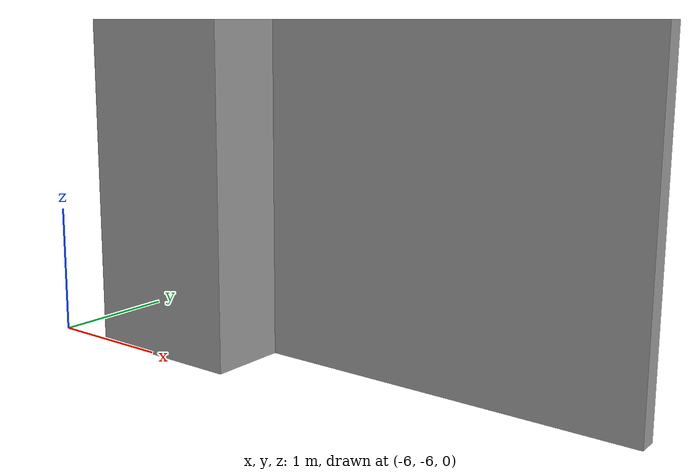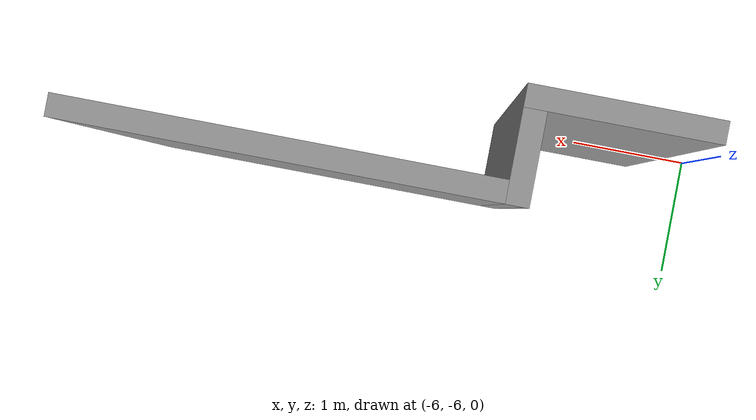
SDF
<?xml version='1.0'?>
<sdf version='1.6'>
  <model name='model_glass'>
    <pose frame=''>-2.7525 -3.0125 0 0 -0 0</pose>
    <link name='Wall_7'>
      <collision name='Wall_7_Collision'>
        <geometry>
          <box>
            <size>1.25 0.15 2.5</size>
          </box>
        </geometry>
        <pose frame=''>0 0 1.25 0 -0 0</pose>
      </collision>
      <visual name='Wall_7_Visual'>
        <pose frame=''>0 0 1.25 0 -0 0</pose>
        <geometry>
          <box>
            <size>1.25 0.15 2.5</size>
          </box>
        </geometry>
        <material>
          <script>
            <uri>file://media/materials/scripts/gazebo.material</uri>
            <name>Gazebo/Grey</name>
          </script>
          <ambient>1 1 1 1</ambient>
        </material>
        <meta>
          <layer>0</layer>
        </meta>
      </visual>
      <pose frame=''>-2.1275 -2.9375 0 0 -0 0</pose>
    </link>
    <link name='Wall_8'>
      <collision name='Wall_8_Collision'>
        <geometry>
          <box>
            <size>0.75 0.15 2.5</size>
          </box>
        </geometry>
        <pose frame=''>0 0 1.25 0 -0 0</pose>
      </collision>
      <visual name='Wall_8_Visual'>
        <pose frame=''>0 0 1.25 0 -0 0</pose>
        <geometry>
          <box>
            <size>0.75 0.15 2.5</size>
          </box>
        </geometry>
        <material>
          <script>
            <uri>file://media/materials/scripts/gazebo.material</uri>
            <name>Gazebo/Grey</name>
          </script>
          <ambient>1 1 1 1</ambient>
        </material>
        <meta>
          <layer>0</layer>
        </meta>
      </visual>
      <pose frame=''>-1.5775 -2.6375 0 0 -0 1.5708</pose>
    </link>
    <link name='Wall_9'>
      <collision name='Wall_9_Collision'>
        <geometry>
          <box>
            <size>3 0.15 2.5</size>
          </box>
        </geometry>
        <pose frame=''>0 0 1.25 0 -0 0</pose>
      </collision>
      <visual name='Wall_9_Visual'>
        <pose frame=''>0 0 1.25 0 -0 0</pose>
        <geometry>
          <box>
            <size>3 0.15 2.5</size>
          </box>
        </geometry>
        <material>
          <script>
            <uri>file://media/materials/scripts/gazebo.material</uri>
            <name>Gazebo/Grey</name>
          </script>
          <ambient>1 1 1 1</ambient>
        </material>
        <meta>
          <layer>0</layer>
        </meta>
      </visual>
      <pose frame=''>-0.1525 -2.3375 0 0 -0 0</pose>
    </link>
    <static>1</static>
  </model>
</sdf>
